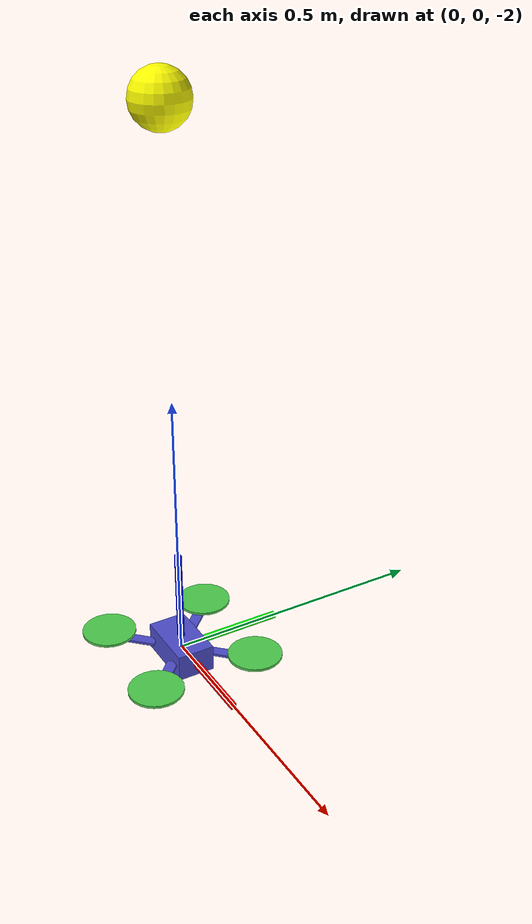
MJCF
<mujoco model="bbq">
	<compiler inertiafromgeom="auto" coordinate="local"/>
    <option timestep='0.001' iterations="50" solver="PGS" gravity="0 0 -9.81" density="1" viscosity="1e-5">
        <flag energy="enable"/>
    </option>
	<worldbody>
		<geom name="floor" pos="0 0 -4" size="2 2 .2" type="plane"  conaffinity="1" rgba="1 1 1 1" condim="3"/>
		<body name="quadrotor" pos="0 0 -2">
			<geom name="core" type="box" pos="0 0 0" quat = "1. 0. 0. 0" size="0.06 0.035 0.025"  rgba="0.3 0.3 0.8 1" mass = ".2" contype="1" conaffinity="1" />

			<geom name="a00" type="box" pos=".071 0.071 0.0" size="0.05 0.01 0.0025"  quat = ".924 0.0 0.0 0.383" rgba="0.3 0.3 0.8 1" mass = ".025"/>
			<geom name="a10" type="box" pos=".071 -0.071 0.0" size="0.05 0.01 0.0025"  quat = ".383 0.0 0.0 0.924" rgba="0.3 0.3 0.8 1" mass = ".025"/>
			<geom name="a20" type="box" pos="-0.071 -0.071 0.0" size="0.05 0.01 0.0025"  quat = "-.383 0.0 0.0 0.924" rgba="0.3 0.3 0.8 1" mass = ".025"/>
			<geom name="a30" type="box" pos="-.071 0.071 0.0" size="0.05 0.01 0.0025"  quat = ".924 0.0 0.0 -0.383" rgba="0.3 0.3 0.8 1" mass = ".025"/>

			<joint name="root"   type="free" damping="0" armature="0" pos="0 0 0" />

			<!-- Actuator sites to attach actuators  -->
            <site name="thrust" type="box" pos="0 0 0"  size="0.06 0.035 0.025"  quat = "1.0 0.0 0.0 0." rgba="0.3 0.8 0.3 1"/>
			<site name="rateX" type="box" pos="0 0 0" quat = "1. 0. 0. 0."  size="0.06 0.035 0.025" rgba="0.3 0.8 0.3 1" />
			<site name="rateY" type="box" pos="0 0 0" quat = "1. 0. 0. 0."	size="0.06 0.035 0.025" rgba="0.3 0.8 0.3 1" />
			<site name="rateZ" type="box" pos="0 0 0" quat = "1. 0. 0. 0."  size="0.06 0.035 0.025" rgba="0.3 0.8 0.3 1" />

			<!-- Thruster geometries for collisions since site's are excluded from collision checking -->
            <geom name="thruster0" type="cylinder" pos=" 0.1  0.1  0.01" size="0.05 0.0025"  quat = "1.0 0.0 0.0 0." rgba="0.3 0.8 0.3 1" mass = ".025"/>
            <geom name="thruster1" type="cylinder" pos=" 0.1 -0.1  0.01" size="0.05 0.0025"  quat = "1.0 0.0 0.0 0." rgba="0.3 0.8 0.3 1" mass = ".025"/>
            <geom name="thruster2" type="cylinder" pos="-0.1 -0.1  0.01" size="0.05 0.0025"  quat = "1.0 0.0 0.0 0." rgba="0.3 0.8 0.3 1" mass = ".025"/>
            <geom name="thruster3" type="cylinder" pos="-0.1  0.1  0.01" size="0.05 0.0025"  quat = "1.0 0.0 0.0 0." rgba="0.3 0.8 0.3 1" mass = ".025"/>

            <!-- Visualization of the coordinate frame -->
			<site name="qcX" type="box" pos="0.1 0.0 0.0" size="0.1 0.005 0.005"  quat = " 1.000  0.0  0.0    0."     rgba="1 0 0 1" />
			<site name="qcY" type="box" pos="0.0 0.1 0.0" size="0.1 0.005 0.005"  quat = " 0.707  0.0  0.0    0.707"  rgba="0 1 0 1" />
			<site name="qcZ" type="box" pos="0.0 0.0 0.1" size="0.1 0.005 0.005"  quat = "-0.707  0.0  0.707  0."     rgba="0 0 1 1" />
		</body>
        <body name="ball" pos="0 0 -1">
            <joint name="ball_joint" type="free" armature='0' damping="0" limited="false"/>
            <geom name="ball" type="sphere" size=".05" solref="0.001 -0.88" mass = ".01" density='25' contype="1" conaffinity="1" condim="3" rgba="1 1 0 1"/>
        </body>
	</worldbody>
    <actuator>
		<motor ctrllimited="true" ctrlrange="0.0 7.0" gear="0  0. 1. 0. 0. 0." site="thrust"/>
		<velocity ctrllimited="true" ctrlrange="-1 1" gear="0. 0. 0. 1. 0. 0." kv="0.1" site="rateX"/>
		<velocity ctrllimited="true" ctrlrange="-1 1" gear="0. 0. 0. 0. 1. 0." kv="0.1" site="rateY"/>
		<velocity ctrllimited="true" ctrlrange="-1 1" gear="0. 0. 0. 0. 0. 1." kv="0.1" site="rateZ"/>
	</actuator>
</mujoco>
